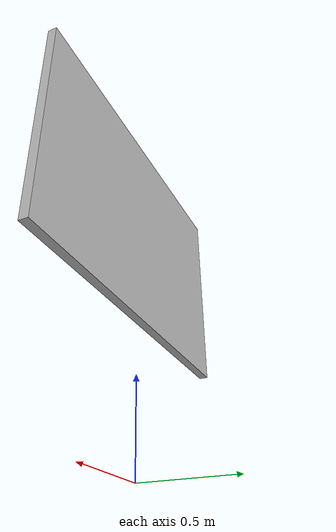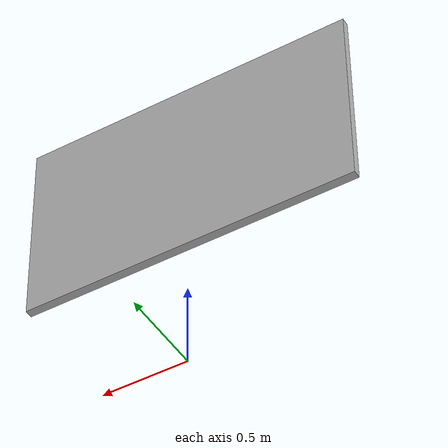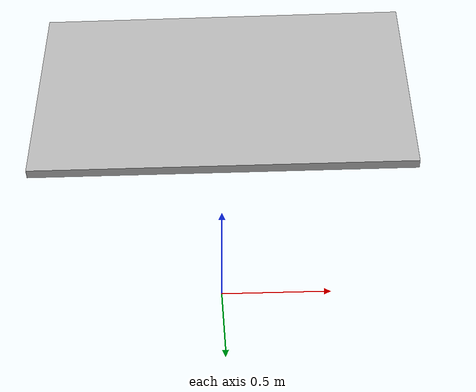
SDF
<?xml version="1.0" ?>
<sdf version="1.5">
  <model name="room2_img2p">

      <pose>0 0 1.4 0 0 0</pose>

      <static>true</static>

      <link name="link">
      <collision name='collision'>
        <geometry>
          <box>
            <size>2 0.05 1.2</size>
          </box>
        </geometry>
      </collision>

      <visual name='visual'>
        <geometry>
          <box>
            <size>2 0.05 1.2</size>
          </box>
        </geometry>

        <material>
          <script>
            <uri>model://leobot_gazebo/models/room2_img2p/materials/scripts</uri>
            <uri>model://leobot_gazebo/models/room2_img2p/materials/textures</uri>
            <name>room2/img2p</name>
          </script>
        </material>
      </visual>
    </link>
  </model>
</sdf>
